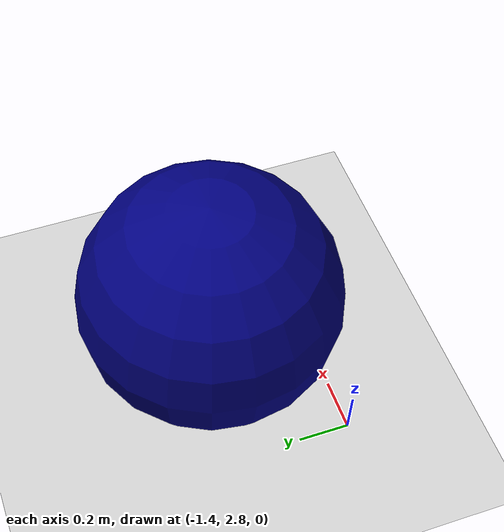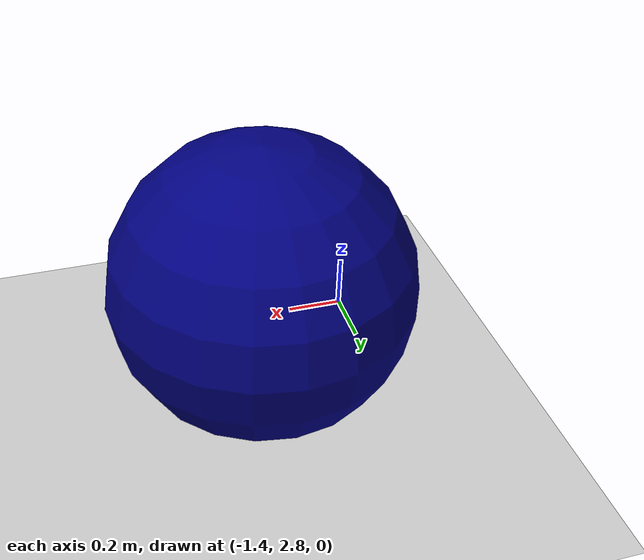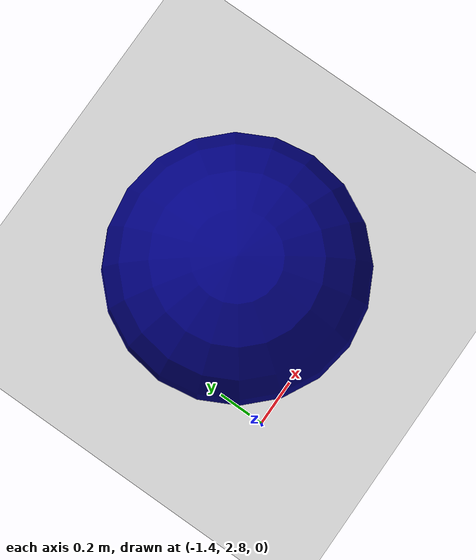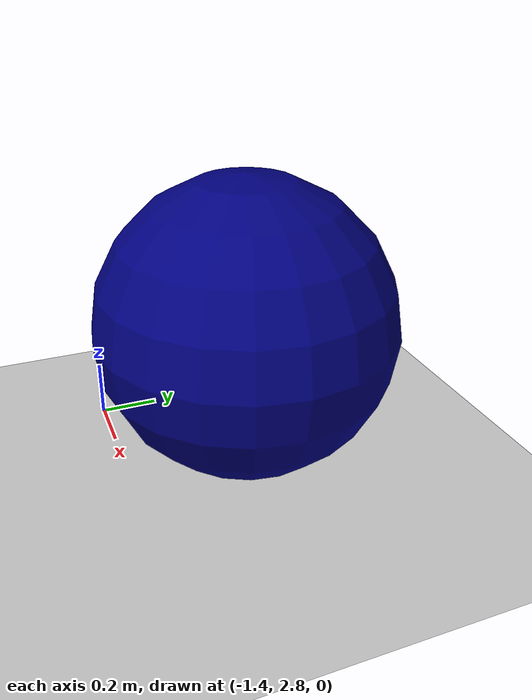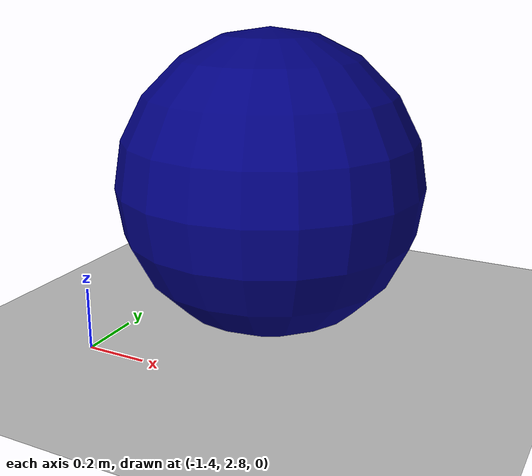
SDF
<sdf version='1.9'>
  <world name='default'>

    <plugin
      filename="gz-sim-physics-system"
      name="gz::sim::systems::Physics">
    </plugin>
    <plugin
      filename="gz-sim-user-commands-system"
      name="gz::sim::systems::UserCommands">
    </plugin>
    <plugin
      filename="gz-sim-scene-broadcaster-system"
      name="gz::sim::systems::SceneBroadcaster">
    </plugin>
    <plugin
      filename="gz-sim-sensors-system"
      name="gz::sim::systems::Sensors">
      <render_engine>ogre2</render_engine>
    </plugin>
    <plugin
      filename="gz-sim-imu-system"
      name="gz::sim::systems::Imu">
    </plugin>

     <include>
      <uri>
        https://fuel.gazebosim.org/1.0/OpenRobotics/models/Ground Plane
      </uri>
    </include>

    <include>
      <uri>
        https://fuel.gazebosim.org/1.0/OpenRobotics/models/Sun
      </uri>
    </include>

    <gravity>0 0 -9.8</gravity>
    <magnetic_field>6e-06 2.3e-05 -4.2e-05</magnetic_field>
    <atmosphere type='adiabatic'/>
    <physics type='ode'>
      <max_step_size>0.001</max_step_size>
      <real_time_factor>1</real_time_factor>
      <real_time_update_rate>1000</real_time_update_rate>
    </physics>
    <scene>
      <ambient>0.4 0.4 0.4 1</ambient>
      <background>0.7 0.7 0.7 1</background>
      <shadows>true</shadows>
    </scene>

    <model name='sphere'>
      <pose>-0.970627 3.22144 0.5 0 -0 0</pose>
      <link name='sphere_link'>
        <inertial>
          <inertia>
            <ixx>0.10000000000000001</ixx>
            <ixy>0</ixy>
            <ixz>0</ixz>
            <iyy>0.10000000000000001</iyy>
            <iyz>0</iyz>
            <izz>0.10000000000000001</izz>
          </inertia>
          <mass>1</mass>
          <pose>0 0 0 0 -0 0</pose>
        </inertial>
        <collision name='sphere_collision'>
          <geometry>
            <sphere>
              <radius>0.5</radius>
            </sphere>
          </geometry>
          <surface>
            <friction>
              <ode/>
            </friction>
            <bounce/>
            <contact/>
          </surface>
        </collision>
        <visual name='sphere_visual'>
          <geometry>
            <sphere>
              <radius>0.5</radius>
            </sphere>
          </geometry>
          <material>
            <ambient>0.0 0.0 0.2 1.0</ambient>
            <diffuse>0.0 0.0 0.5 1.0</diffuse>
            <specular>0.0 0.0 0.0 1.0</specular>
            <emissive>0.0 0.0 0.0 1.0</emissive>
          </material>
        </visual>
        <pose>0 0 0 0 -0 0</pose>
        <enable_wind>false</enable_wind>
      </link>
      <static>true</static>
      <self_collide>false</self_collide>
    </model>
  </world>
</sdf>
